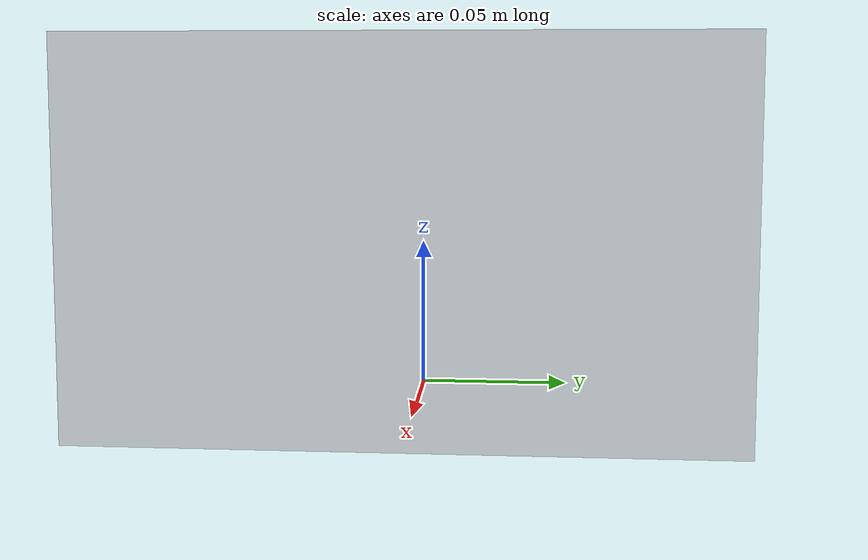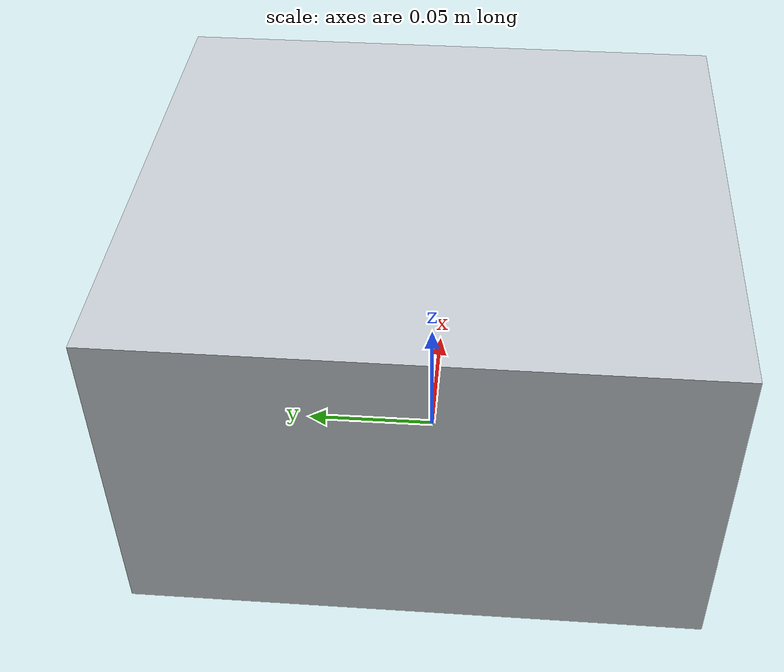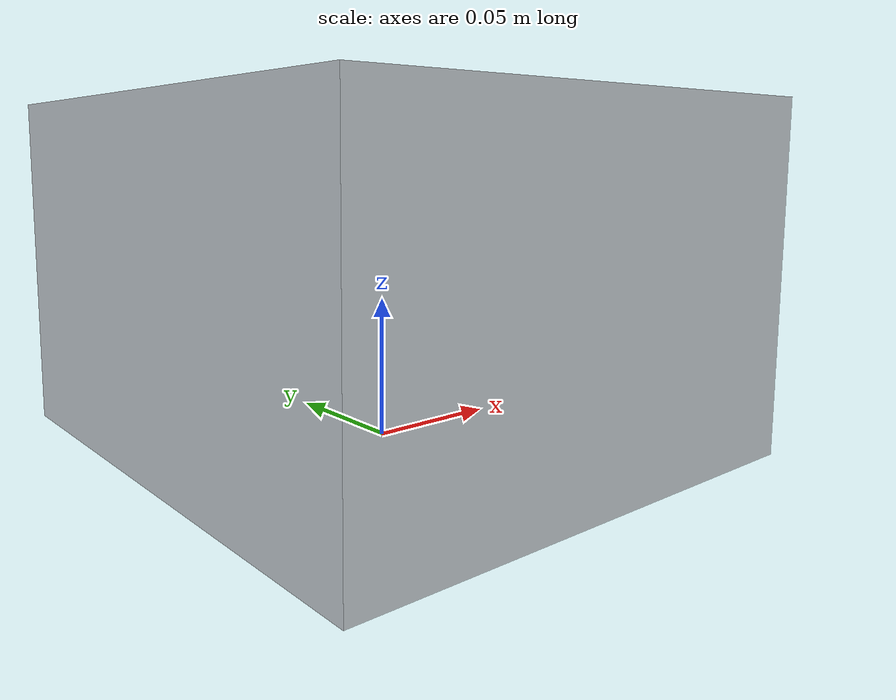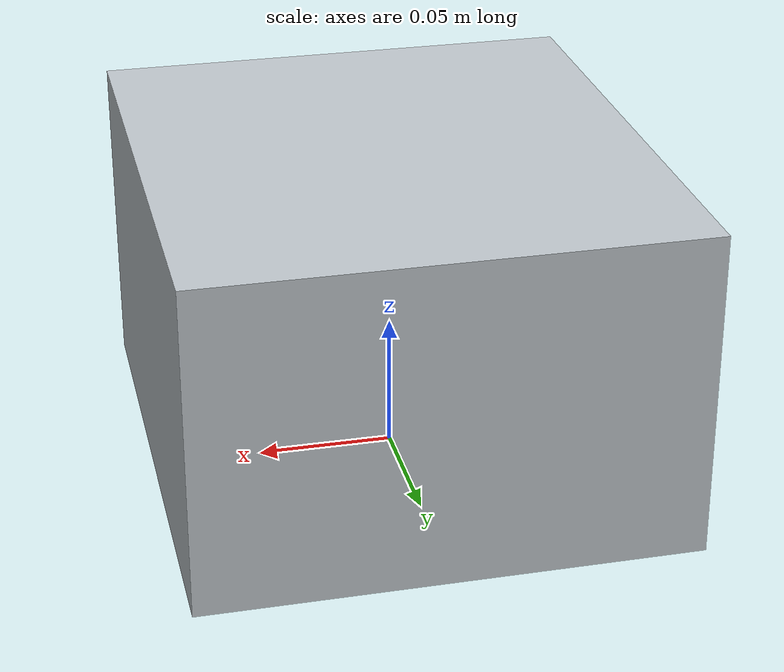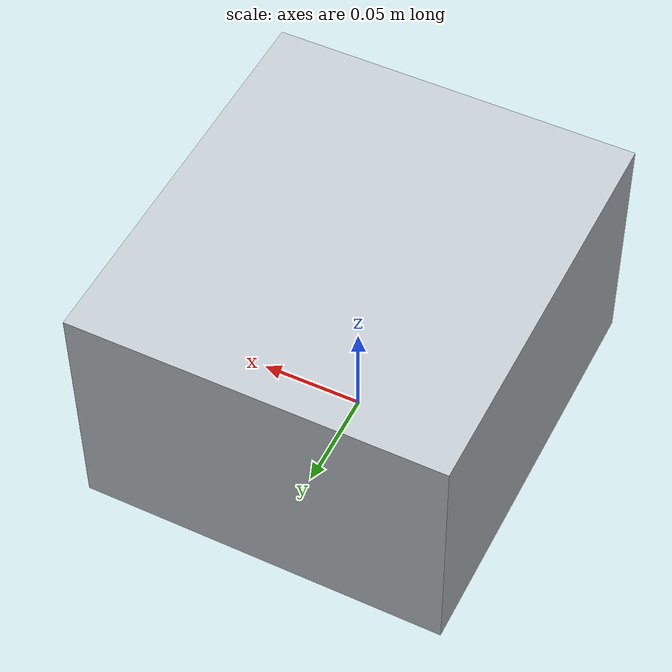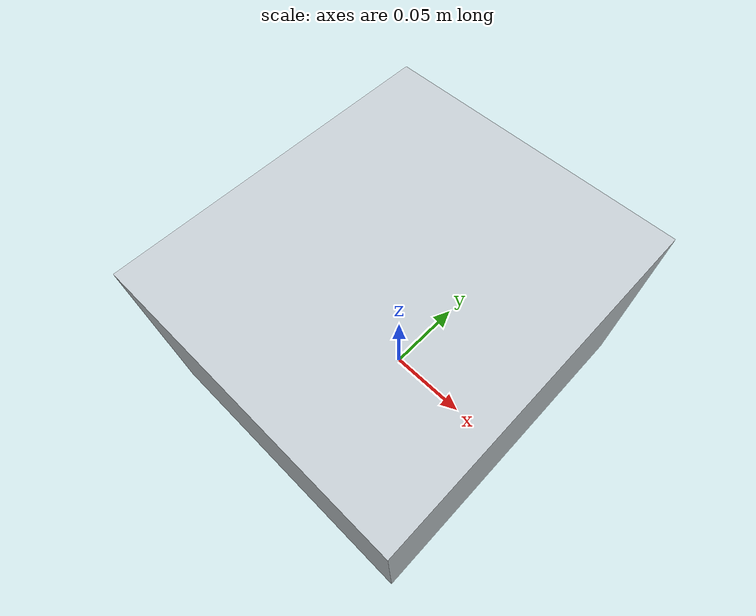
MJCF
<?xml version="1.0" encoding="utf-8"?>
<mujoco model="spectrophotometer_reading">
  <compiler angle="radian" autolimits="true"/>
  <default>
    <default class="body"><geom contype="1" conaffinity="1"/></default>
  </default>
  <worldbody>
    <body name="base">
      <geom type="box" size="0.09 0.1 0.06" pos="0 0 0.06" rgba="0.75 0.78 0.8 1" class="body"/>

    </body>
  </worldbody>
</mujoco>
